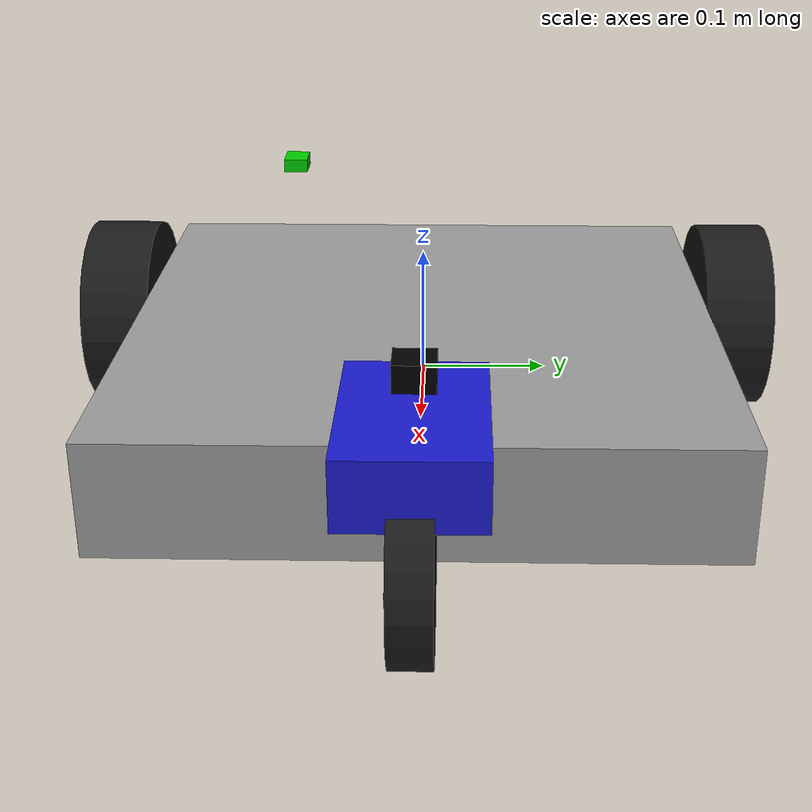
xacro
<?xml version="1.0"?>
<robot name="roover" xmlns:xacro="http://ros.org/wiki/xacro">

  <!-- Hoofdchassis -->
  <link name="base_link">
    <visual>
      <geometry>
        <box size="0.484 0.475 0.09"/> <!-- 484 x 475 x 90 mm -->
      </geometry>
      <origin xyz="0.0 0.0 0.0" rpy="0 0 0"/> <!--  midden chassis -->
      <material name="gray">
        <color rgba="0.6 0.6 0.6 1.0"/>
      </material>
    </visual>
    <collision>
      <geometry>
        <box size="0.484 0.475 0.09"/>
      </geometry>
      <origin xyz="0.0 0.0 0.0" rpy="0 0 0"/>
    </collision>
  </link>

  <!-- Linker wiel -->
  <link name="wheel_left">
    <visual>
      <geometry>
        <cylinder radius="0.0825" length="0.06"/> <!-- Ø165mm breedte 60mm -->
      </geometry>
      <material name="black">
        <color rgba="0.1 0.1 0.1 1.0"/>
      </material>
    </visual>
  </link>

  <joint name="left_wheel_joint" type="continuous">
    <parent link="base_link"/>
    <child link="wheel_left"/>
    <origin xyz="-0.15 0.2775 -0.01" rpy="-1.5708 0 0"/>
    <axis xyz="0 1 0"/> <!-- draai-as over Y -->
  </joint>

  <!-- Rechter wiel -->
  <link name="wheel_right">
    <visual>
      <geometry>
        <cylinder radius="0.0825" length="0.06"/>
      </geometry>
      <material name="black"/>
    </visual>
  </link>

  <joint name="right_wheel_joint" type="continuous">
    <parent link="base_link"/>
    <child link="wheel_right"/>
    <origin xyz="-0.15 -0.2775 -0.01" rpy="1.5708 0 0"/>
    <axis xyz="0 1 0"/> <!-- draai-as over Y -->
  </joint>

  <!-- Voorblokje -->
  <link name="front_block">
    <visual>
      <geometry>
        <box size="0.15 0.10 0.05"/>
      </geometry>
      <origin xyz="-0.075 0.0 -0.025" rpy="0 0 0"/> <!-- vooraan, gecentreerd -->
      <material name="blue">
        <color rgba="0.1 0.1 0.8 1.0"/>
      </material>
    </visual>
  </link>

  <joint name="front_joint" type="fixed">
    <parent link="base_link"/>
    <child link="front_block"/>
    <origin xyz="0.35 0 0.09" rpy="0 0 0"/> <!-- positie tov base_link -->
  </joint>

  <!-- Castor wiel -->
  <link name="castor_wheel">
    <visual>
      <geometry>
        <cylinder radius="0.065" length="0.03"/> <!-- Ø130 mm, breedte 30mm -->
      </geometry>
      <origin xyz="0.0 0 0.065" rpy="1.5708 0 0"/> <!-- onder het blokje -->
      <material name="black"/>
    </visual>
  </link>

  <joint name="castor_joint" type="fixed"> <!-- of 'fixed' -->
    <parent link="base_link"/>
    <child  link="castor_wheel"/>
    <origin xyz="0.317 0 -0.07" rpy="0 0 0"/>  <!-- pas aan -->
    <axis xyz="0 0 1"/>
  </joint>

  <!-- GPS module -->
  <link name="gps_link">
    <visual>
      <geometry>
        <box size="0.03 0.03 0.02"/> <!-- 30 x 30 x 20 mm -->
      </geometry>
      <origin xyz="0.0 0 0.01" rpy="0 0 0"/> <!-- vooraan, gecentreerd, bovenkant voorblokje = 170 mm -->
      <material name="black">
        <color rgba="0.0 0.0 0.0 1.0"/>
      </material>
    </visual>
  </link>

  <!-- Joint: GPS vast op base_link -->
  <joint name="gps_joint" type="fixed">
    <parent link="base_link"/>
    <child link="gps_link"/>
    <origin xyz="0.25 0 0.095" rpy="0 0 0"/>
  </joint>

  <!-- IMU module -->
  <link name="imu_link">
    <visual>
      <geometry>
        <box size="0.025 0.018 0.010"/> <!-- 25 x 18 x 10 mm -->
      </geometry>
      <origin xyz="0.0 0.0 0.005" rpy="0 0 0"/> <!-- bovenop chassis (90 mm hoog, dus +0.14m) -->
      <material name="green">
        <color rgba="0.0 0.8 0.0 1.0"/>
      </material>
    </visual>
  </link>

  <!-- Joint: IMU vast op chassis -->
  <joint name="imu_joint" type="fixed">
    <parent link="base_link"/>
    <child link="imu_link"/>
    <origin xyz="0 -0.1 0.17" rpy="0 0 0"/>
  </joint>
</robot>
